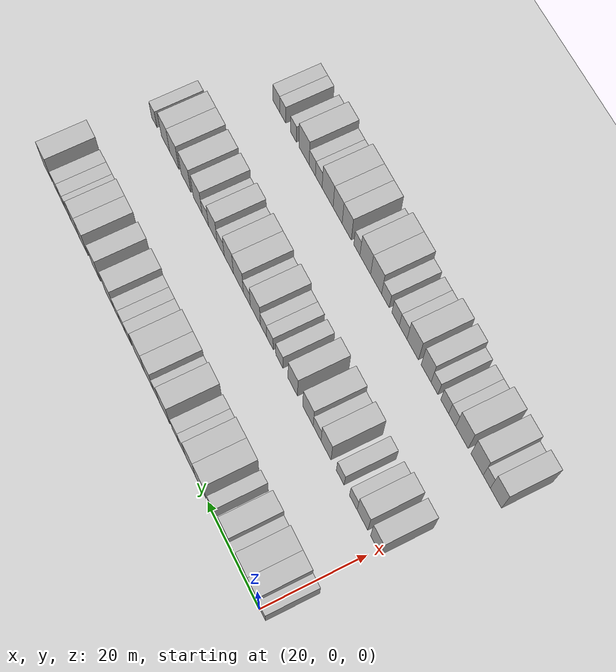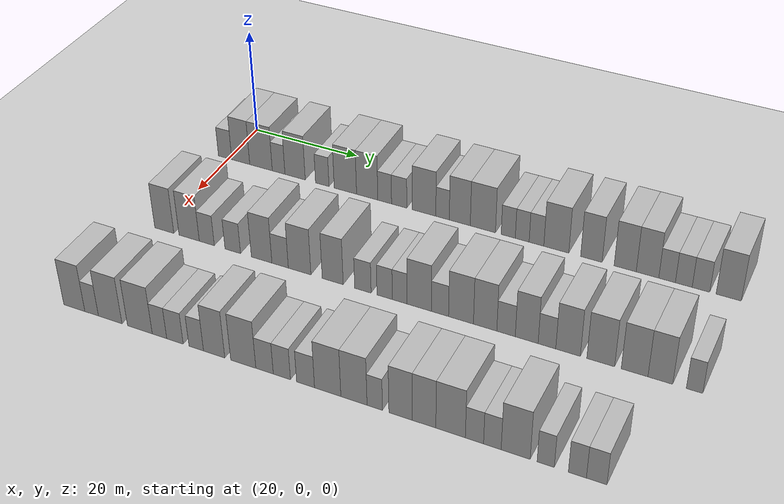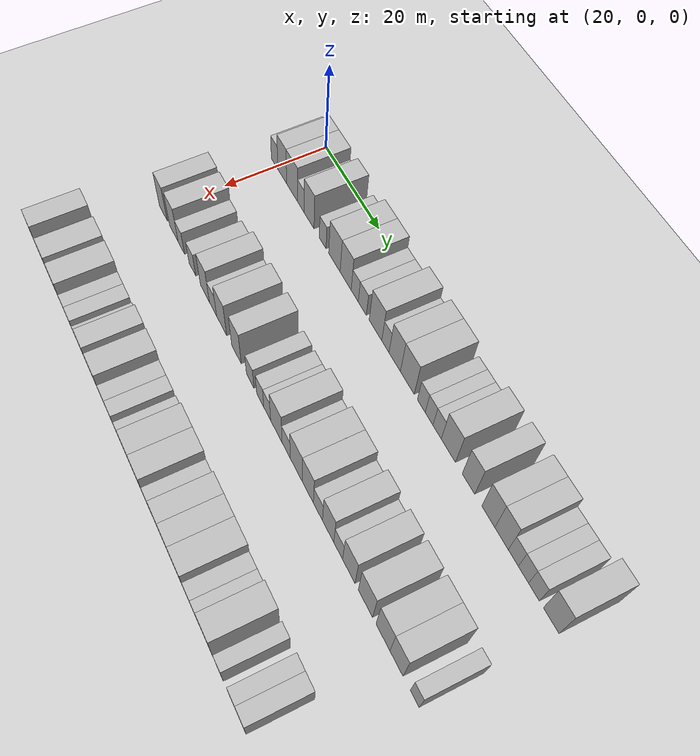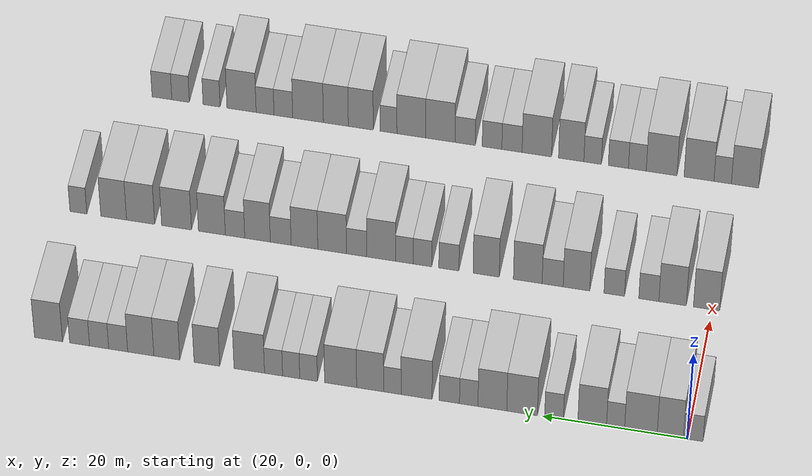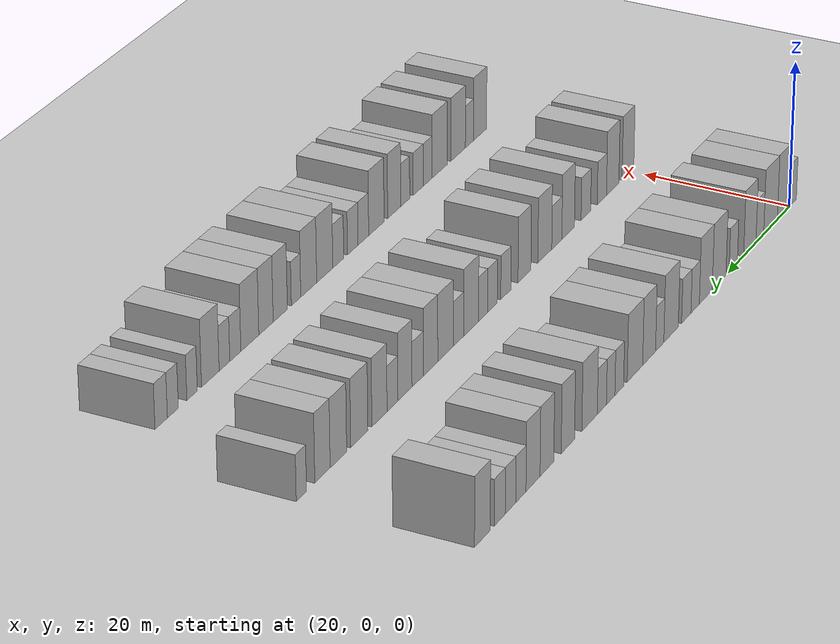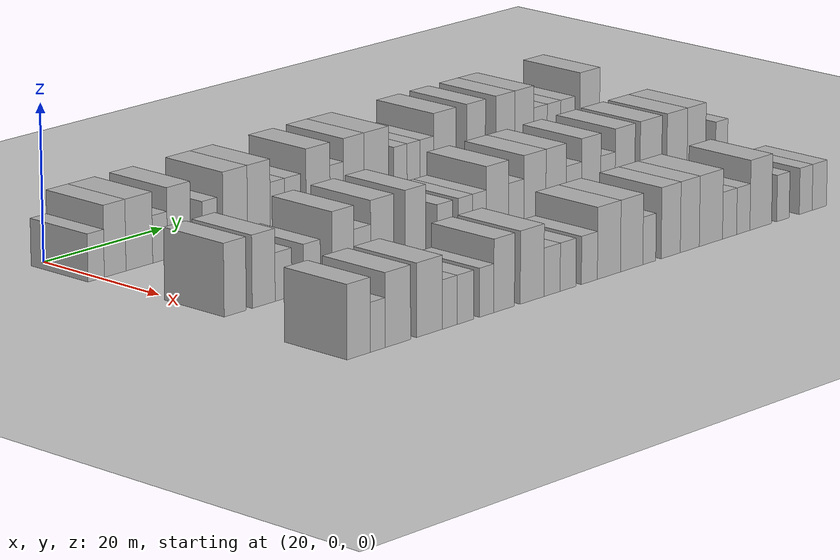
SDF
<sdf version="1.6">
 <world name="default">
  <include><name>ground_plane_1</name><uri>model://HANNAS_ground_plane</uri></include>
  <model name="building_96">
   <static>1</static>
   <pose>25.0000 -0.7693 0 0.000000 0.000000 0.000000</pose>
   <link name="link">
    <pose>0 0 3.00 0 0 0</pose>
    <collision name="collision"><geometry><box><size>10.0000 2.6978 6.0000</size></box></geometry></collision>
    <visual name="visual">
     <cast_shadows>0</cast_shadows>
     <geometry><box><size>10.0000 2.6978 6.0000</size></box></geometry>
     <material>
      <script>
       <uri>model://HANNAS_wall/materials/scripts</uri>
       <uri>model://HANNAS_wall/materials/textures</uri>
       <name>vrc/HANNAS_wall</name>
      </script>
     </material>
    </visual>
   </link>
  </model>
  <model name="building_97">
   <static>1</static>
   <pose>25.0000 2.3828 0 0.000000 0.000000 0.000000</pose>
   <link name="link">
    <pose>0 0 4.50 0 0 0</pose>
    <collision name="collision"><geometry><box><size>10.0000 3.6064 9.0000</size></box></geometry></collision>
    <visual name="visual">
     <cast_shadows>0</cast_shadows>
     <geometry><box><size>10.0000 3.6064 9.0000</size></box></geometry>
     <material>
      <script>
       <uri>model://HANNAS_wall/materials/scripts</uri>
       <uri>model://HANNAS_wall/materials/textures</uri>
       <name>vrc/HANNAS_wall</name>
      </script>
     </material>
    </visual>
   </link>
  </model>
  <model name="building_98">
   <static>1</static>
   <pose>25.0000 6.4276 0 0.000000 0.000000 0.000000</pose>
   <link name="link">
    <pose>0 0 4.50 0 0 0</pose>
    <collision name="collision"><geometry><box><size>10.0000 4.4834 9.0000</size></box></geometry></collision>
    <visual name="visual">
     <cast_shadows>0</cast_shadows>
     <geometry><box><size>10.0000 4.4834 9.0000</size></box></geometry>
     <material>
      <script>
       <uri>model://HANNAS_wall/materials/scripts</uri>
       <uri>model://HANNAS_wall/materials/textures</uri>
       <name>vrc/HANNAS_wall</name>
      </script>
     </material>
    </visual>
   </link>
  </model>
  <model name="building_99">
   <static>1</static>
   <pose>25.0000 9.9178 0 0.000000 0.000000 0.000000</pose>
   <link name="link">
    <pose>0 0 3.00 0 0 0</pose>
    <collision name="collision"><geometry><box><size>10.0000 2.4969 6.0000</size></box></geometry></collision>
    <visual name="visual">
     <cast_shadows>0</cast_shadows>
     <geometry><box><size>10.0000 2.4969 6.0000</size></box></geometry>
     <material>
      <script>
       <uri>model://HANNAS_wall/materials/scripts</uri>
       <uri>model://HANNAS_wall/materials/textures</uri>
       <name>vrc/HANNAS_wall</name>
      </script>
     </material>
    </visual>
   </link>
  </model>
  <model name="building_100">
   <static>1</static>
   <pose>25.0000 13.1443 0 0.000000 0.000000 0.000000</pose>
   <link name="link">
    <pose>0 0 4.50 0 0 0</pose>
    <collision name="collision"><geometry><box><size>10.0000 3.9560 9.0000</size></box></geometry></collision>
    <visual name="visual">
     <cast_shadows>0</cast_shadows>
     <geometry><box><size>10.0000 3.9560 9.0000</size></box></geometry>
     <material>
      <script>
       <uri>model://HANNAS_wall/materials/scripts</uri>
       <uri>model://HANNAS_wall/materials/textures</uri>
       <name>vrc/HANNAS_wall</name>
      </script>
     </material>
    </visual>
   </link>
  </model>
  <model name="building_101">
   <static>1</static>
   <pose>25.0000 18.4155 0 0.000000 0.000000 0.000000</pose>
   <link name="link">
    <pose>0 0 3.00 0 0 0</pose>
    <collision name="collision"><geometry><box><size>10.0000 2.5864 6.0000</size></box></geometry></collision>
    <visual name="visual">
     <cast_shadows>0</cast_shadows>
     <geometry><box><size>10.0000 2.5864 6.0000</size></box></geometry>
     <material>
      <script>
       <uri>model://HANNAS_wall/materials/scripts</uri>
       <uri>model://HANNAS_wall/materials/textures</uri>
       <name>vrc/HANNAS_wall</name>
      </script>
     </material>
    </visual>
   </link>
  </model>
  <model name="building_102">
   <static>1</static>
   <pose>25.0000 22.8309 0 0.000000 0.000000 0.000000</pose>
   <link name="link">
    <pose>0 0 4.50 0 0 0</pose>
    <collision name="collision"><geometry><box><size>10.0000 4.2445 9.0000</size></box></geometry></collision>
    <visual name="visual">
     <cast_shadows>0</cast_shadows>
     <geometry><box><size>10.0000 4.2445 9.0000</size></box></geometry>
     <material>
      <script>
       <uri>model://HANNAS_wall/materials/scripts</uri>
       <uri>model://HANNAS_wall/materials/textures</uri>
       <name>vrc/HANNAS_wall</name>
      </script>
     </material>
    </visual>
   </link>
  </model>
  <model name="building_103">
   <static>1</static>
   <pose>25.0000 26.9489 0 0.000000 0.000000 0.000000</pose>
   <link name="link">
    <pose>0 0 4.50 0 0 0</pose>
    <collision name="collision"><geometry><box><size>10.0000 3.9914 9.0000</size></box></geometry></collision>
    <visual name="visual">
     <cast_shadows>0</cast_shadows>
     <geometry><box><size>10.0000 3.9914 9.0000</size></box></geometry>
     <material>
      <script>
       <uri>model://HANNAS_wall/materials/scripts</uri>
       <uri>model://HANNAS_wall/materials/textures</uri>
       <name>vrc/HANNAS_wall</name>
      </script>
     </material>
    </visual>
   </link>
  </model>
  <model name="building_104">
   <static>1</static>
   <pose>25.0000 30.2217 0 0.000000 0.000000 0.000000</pose>
   <link name="link">
    <pose>0 0 3.00 0 0 0</pose>
    <collision name="collision"><geometry><box><size>10.0000 2.5542 6.0000</size></box></geometry></collision>
    <visual name="visual">
     <cast_shadows>0</cast_shadows>
     <geometry><box><size>10.0000 2.5542 6.0000</size></box></geometry>
     <material>
      <script>
       <uri>model://HANNAS_wall/materials/scripts</uri>
       <uri>model://HANNAS_wall/materials/textures</uri>
       <name>vrc/HANNAS_wall</name>
      </script>
     </material>
    </visual>
   </link>
  </model>
  <model name="building_105">
   <static>1</static>
   <pose>25.0000 32.9067 0 0.000000 0.000000 0.000000</pose>
   <link name="link">
    <pose>0 0 3.00 0 0 0</pose>
    <collision name="collision"><geometry><box><size>10.0000 2.8159 6.0000</size></box></geometry></collision>
    <visual name="visual">
     <cast_shadows>0</cast_shadows>
     <geometry><box><size>10.0000 2.8159 6.0000</size></box></geometry>
     <material>
      <script>
       <uri>model://HANNAS_wall/materials/scripts</uri>
       <uri>model://HANNAS_wall/materials/textures</uri>
       <name>vrc/HANNAS_wall</name>
      </script>
     </material>
    </visual>
   </link>
  </model>
  <model name="building_106">
   <static>1</static>
   <pose>25.0000 37.4665 0 0.000000 0.000000 0.000000</pose>
   <link name="link">
    <pose>0 0 4.50 0 0 0</pose>
    <collision name="collision"><geometry><box><size>10.0000 4.3036 9.0000</size></box></geometry></collision>
    <visual name="visual">
     <cast_shadows>0</cast_shadows>
     <geometry><box><size>10.0000 4.3036 9.0000</size></box></geometry>
     <material>
      <script>
       <uri>model://HANNAS_wall/materials/scripts</uri>
       <uri>model://HANNAS_wall/materials/textures</uri>
       <name>vrc/HANNAS_wall</name>
      </script>
     </material>
    </visual>
   </link>
  </model>
  <model name="building_107">
   <static>1</static>
   <pose>25.0000 40.8359 0 0.000000 0.000000 0.000000</pose>
   <link name="link">
    <pose>0 0 3.00 0 0 0</pose>
    <collision name="collision"><geometry><box><size>10.0000 2.4352 6.0000</size></box></geometry></collision>
    <visual name="visual">
     <cast_shadows>0</cast_shadows>
     <geometry><box><size>10.0000 2.4352 6.0000</size></box></geometry>
     <material>
      <script>
       <uri>model://HANNAS_wall/materials/scripts</uri>
       <uri>model://HANNAS_wall/materials/textures</uri>
       <name>vrc/HANNAS_wall</name>
      </script>
     </material>
    </visual>
   </link>
  </model>
  <model name="building_108">
   <static>1</static>
   <pose>25.0000 43.9327 0 0.000000 0.000000 0.000000</pose>
   <link name="link">
    <pose>0 0 4.50 0 0 0</pose>
    <collision name="collision"><geometry><box><size>10.0000 3.7583 9.0000</size></box></geometry></collision>
    <visual name="visual">
     <cast_shadows>0</cast_shadows>
     <geometry><box><size>10.0000 3.7583 9.0000</size></box></geometry>
     <material>
      <script>
       <uri>model://HANNAS_wall/materials/scripts</uri>
       <uri>model://HANNAS_wall/materials/textures</uri>
       <name>vrc/HANNAS_wall</name>
      </script>
     </material>
    </visual>
   </link>
  </model>
  <model name="building_109">
   <static>1</static>
   <pose>25.0000 48.0435 0 0.000000 0.000000 0.000000</pose>
   <link name="link">
    <pose>0 0 4.50 0 0 0</pose>
    <collision name="collision"><geometry><box><size>10.0000 4.4634 9.0000</size></box></geometry></collision>
    <visual name="visual">
     <cast_shadows>0</cast_shadows>
     <geometry><box><size>10.0000 4.4634 9.0000</size></box></geometry>
     <material>
      <script>
       <uri>model://HANNAS_wall/materials/scripts</uri>
       <uri>model://HANNAS_wall/materials/textures</uri>
       <name>vrc/HANNAS_wall</name>
      </script>
     </material>
    </visual>
   </link>
  </model>
  <model name="building_110">
   <static>1</static>
   <pose>25.0000 52.5089 0 0.000000 0.000000 0.000000</pose>
   <link name="link">
    <pose>0 0 3.00 0 0 0</pose>
    <collision name="collision"><geometry><box><size>10.0000 2.4673 6.0000</size></box></geometry></collision>
    <visual name="visual">
     <cast_shadows>0</cast_shadows>
     <geometry><box><size>10.0000 2.4673 6.0000</size></box></geometry>
     <material>
      <script>
       <uri>model://HANNAS_wall/materials/scripts</uri>
       <uri>model://HANNAS_wall/materials/textures</uri>
       <name>vrc/HANNAS_wall</name>
      </script>
     </material>
    </visual>
   </link>
  </model>
  <model name="building_111">
   <static>1</static>
   <pose>25.0000 54.9427 0 0.000000 0.000000 0.000000</pose>
   <link name="link">
    <pose>0 0 3.00 0 0 0</pose>
    <collision name="collision"><geometry><box><size>10.0000 2.4004 6.0000</size></box></geometry></collision>
    <visual name="visual">
     <cast_shadows>0</cast_shadows>
     <geometry><box><size>10.0000 2.4004 6.0000</size></box></geometry>
     <material>
      <script>
       <uri>model://HANNAS_wall/materials/scripts</uri>
       <uri>model://HANNAS_wall/materials/textures</uri>
       <name>vrc/HANNAS_wall</name>
      </script>
     </material>
    </visual>
   </link>
  </model>
  <model name="building_112">
   <static>1</static>
   <pose>25.0000 57.4086 0 0.000000 0.000000 0.000000</pose>
   <link name="link">
    <pose>0 0 3.00 0 0 0</pose>
    <collision name="collision"><geometry><box><size>10.0000 2.5314 6.0000</size></box></geometry></collision>
    <visual name="visual">
     <cast_shadows>0</cast_shadows>
     <geometry><box><size>10.0000 2.5314 6.0000</size></box></geometry>
     <material>
      <script>
       <uri>model://HANNAS_wall/materials/scripts</uri>
       <uri>model://HANNAS_wall/materials/textures</uri>
       <name>vrc/HANNAS_wall</name>
      </script>
     </material>
    </visual>
   </link>
  </model>
  <model name="building_113">
   <static>1</static>
   <pose>25.0000 60.8050 0 0.000000 0.000000 0.000000</pose>
   <link name="link">
    <pose>0 0 4.50 0 0 0</pose>
    <collision name="collision"><geometry><box><size>10.0000 4.2615 9.0000</size></box></geometry></collision>
    <visual name="visual">
     <cast_shadows>0</cast_shadows>
     <geometry><box><size>10.0000 4.2615 9.0000</size></box></geometry>
     <material>
      <script>
       <uri>model://HANNAS_wall/materials/scripts</uri>
       <uri>model://HANNAS_wall/materials/textures</uri>
       <name>vrc/HANNAS_wall</name>
      </script>
     </material>
    </visual>
   </link>
  </model>
  <model name="building_114">
   <static>1</static>
   <pose>25.0000 66.7361 0 0.000000 0.000000 0.000000</pose>
   <link name="link">
    <pose>0 0 4.50 0 0 0</pose>
    <collision name="collision"><geometry><box><size>10.0000 3.6007 9.0000</size></box></geometry></collision>
    <visual name="visual">
     <cast_shadows>0</cast_shadows>
     <geometry><box><size>10.0000 3.6007 9.0000</size></box></geometry>
     <material>
      <script>
       <uri>model://HANNAS_wall/materials/scripts</uri>
       <uri>model://HANNAS_wall/materials/textures</uri>
       <name>vrc/HANNAS_wall</name>
      </script>
     </material>
    </visual>
   </link>
  </model>
  <model name="building_115">
   <static>1</static>
   <pose>25.0000 72.3580 0 0.000000 0.000000 0.000000</pose>
   <link name="link">
    <pose>0 0 4.50 0 0 0</pose>
    <collision name="collision"><geometry><box><size>10.0000 3.6429 9.0000</size></box></geometry></collision>
    <visual name="visual">
     <cast_shadows>0</cast_shadows>
     <geometry><box><size>10.0000 3.6429 9.0000</size></box></geometry>
     <material>
      <script>
       <uri>model://HANNAS_wall/materials/scripts</uri>
       <uri>model://HANNAS_wall/materials/textures</uri>
       <name>vrc/HANNAS_wall</name>
      </script>
     </material>
    </visual>
   </link>
  </model>
  <model name="building_116">
   <static>1</static>
   <pose>25.0000 76.0213 0 0.000000 0.000000 0.000000</pose>
   <link name="link">
    <pose>0 0 4.50 0 0 0</pose>
    <collision name="collision"><geometry><box><size>10.0000 3.6837 9.0000</size></box></geometry></collision>
    <visual name="visual">
     <cast_shadows>0</cast_shadows>
     <geometry><box><size>10.0000 3.6837 9.0000</size></box></geometry>
     <material>
      <script>
       <uri>model://HANNAS_wall/materials/scripts</uri>
       <uri>model://HANNAS_wall/materials/textures</uri>
       <name>vrc/HANNAS_wall</name>
      </script>
     </material>
    </visual>
   </link>
  </model>
  <model name="building_117">
   <static>1</static>
   <pose>25.0000 79.2006 0 0.000000 0.000000 0.000000</pose>
   <link name="link">
    <pose>0 0 3.00 0 0 0</pose>
    <collision name="collision"><geometry><box><size>10.0000 2.6751 6.0000</size></box></geometry></collision>
    <visual name="visual">
     <cast_shadows>0</cast_shadows>
     <geometry><box><size>10.0000 2.6751 6.0000</size></box></geometry>
     <material>
      <script>
       <uri>model://HANNAS_wall/materials/scripts</uri>
       <uri>model://HANNAS_wall/materials/textures</uri>
       <name>vrc/HANNAS_wall</name>
      </script>
     </material>
    </visual>
   </link>
  </model>
  <model name="building_118">
   <static>1</static>
   <pose>25.0000 81.8854 0 0.000000 0.000000 0.000000</pose>
   <link name="link">
    <pose>0 0 3.00 0 0 0</pose>
    <collision name="collision"><geometry><box><size>10.0000 2.6946 6.0000</size></box></geometry></collision>
    <visual name="visual">
     <cast_shadows>0</cast_shadows>
     <geometry><box><size>10.0000 2.6946 6.0000</size></box></geometry>
     <material>
      <script>
       <uri>model://HANNAS_wall/materials/scripts</uri>
       <uri>model://HANNAS_wall/materials/textures</uri>
       <name>vrc/HANNAS_wall</name>
      </script>
     </material>
    </visual>
   </link>
  </model>
  <model name="building_119">
   <static>1</static>
   <pose>25.0000 84.6328 0 0.000000 0.000000 0.000000</pose>
   <link name="link">
    <pose>0 0 3.00 0 0 0</pose>
    <collision name="collision"><geometry><box><size>10.0000 2.8002 6.0000</size></box></geometry></collision>
    <visual name="visual">
     <cast_shadows>0</cast_shadows>
     <geometry><box><size>10.0000 2.8002 6.0000</size></box></geometry>
     <material>
      <script>
       <uri>model://HANNAS_wall/materials/scripts</uri>
       <uri>model://HANNAS_wall/materials/textures</uri>
       <name>vrc/HANNAS_wall</name>
      </script>
     </material>
    </visual>
   </link>
  </model>
  <model name="building_120">
   <static>1</static>
   <pose>25.0000 89.0095 0 0.000000 0.000000 0.000000</pose>
   <link name="link">
    <pose>0 0 4.50 0 0 0</pose>
    <collision name="collision"><geometry><box><size>10.0000 3.9533 9.0000</size></box></geometry></collision>
    <visual name="visual">
     <cast_shadows>0</cast_shadows>
     <geometry><box><size>10.0000 3.9533 9.0000</size></box></geometry>
     <material>
      <script>
       <uri>model://HANNAS_wall/materials/scripts</uri>
       <uri>model://HANNAS_wall/materials/textures</uri>
       <name>vrc/HANNAS_wall</name>
      </script>
     </material>
    </visual>
   </link>
  </model>
  <model name="building_282">
   <static>1</static>
   <pose>47.0000 0.8235 0 0.000000 0.000000 0.000000</pose>
   <link name="link">
    <pose>0 0 4.50 0 0 0</pose>
    <collision name="collision"><geometry><box><size>10.0000 3.6619 9.0000</size></box></geometry></collision>
    <visual name="visual">
     <cast_shadows>0</cast_shadows>
     <geometry><box><size>10.0000 3.6619 9.0000</size></box></geometry>
     <material>
      <script>
       <uri>model://HANNAS_wall/materials/scripts</uri>
       <uri>model://HANNAS_wall/materials/textures</uri>
       <name>vrc/HANNAS_wall</name>
      </script>
     </material>
    </visual>
   </link>
  </model>
  <model name="building_283">
   <static>1</static>
   <pose>47.0000 5.5740 0 0.000000 0.000000 0.000000</pose>
   <link name="link">
    <pose>0 0 4.50 0 0 0</pose>
    <collision name="collision"><geometry><box><size>10.0000 3.8389 9.0000</size></box></geometry></collision>
    <visual name="visual">
     <cast_shadows>0</cast_shadows>
     <geometry><box><size>10.0000 3.8389 9.0000</size></box></geometry>
     <material>
      <script>
       <uri>model://HANNAS_wall/materials/scripts</uri>
       <uri>model://HANNAS_wall/materials/textures</uri>
       <name>vrc/HANNAS_wall</name>
      </script>
     </material>
    </visual>
   </link>
  </model>
  <model name="building_284">
   <static>1</static>
   <pose>47.0000 8.9031 0 0.000000 0.000000 0.000000</pose>
   <link name="link">
    <pose>0 0 3.00 0 0 0</pose>
    <collision name="collision"><geometry><box><size>10.0000 2.8193 6.0000</size></box></geometry></collision>
    <visual name="visual">
     <cast_shadows>0</cast_shadows>
     <geometry><box><size>10.0000 2.8193 6.0000</size></box></geometry>
     <material>
      <script>
       <uri>model://HANNAS_wall/materials/scripts</uri>
       <uri>model://HANNAS_wall/materials/textures</uri>
       <name>vrc/HANNAS_wall</name>
      </script>
     </material>
    </visual>
   </link>
  </model>
  <model name="building_285">
   <static>1</static>
   <pose>47.0000 13.7507 0 0.000000 0.000000 0.000000</pose>
   <link name="link">
    <pose>0 0 3.00 0 0 0</pose>
    <collision name="collision"><geometry><box><size>10.0000 2.8761 6.0000</size></box></geometry></collision>
    <visual name="visual">
     <cast_shadows>0</cast_shadows>
     <geometry><box><size>10.0000 2.8761 6.0000</size></box></geometry>
     <material>
      <script>
       <uri>model://HANNAS_wall/materials/scripts</uri>
       <uri>model://HANNAS_wall/materials/textures</uri>
       <name>vrc/HANNAS_wall</name>
      </script>
     </material>
    </visual>
   </link>
  </model>
  <model name="building_286">
   <static>1</static>
   <pose>47.0000 19.0590 0 0.000000 0.000000 0.000000</pose>
   <link name="link">
    <pose>0 0 4.50 0 0 0</pose>
    <collision name="collision"><geometry><box><size>10.0000 3.7406 9.0000</size></box></geometry></collision>
    <visual name="visual">
     <cast_shadows>0</cast_shadows>
     <geometry><box><size>10.0000 3.7406 9.0000</size></box></geometry>
     <material>
      <script>
       <uri>model://HANNAS_wall/materials/scripts</uri>
       <uri>model://HANNAS_wall/materials/textures</uri>
       <name>vrc/HANNAS_wall</name>
      </script>
     </material>
    </visual>
   </link>
  </model>
  <model name="building_287">
   <static>1</static>
   <pose>47.0000 22.4105 0 0.000000 0.000000 0.000000</pose>
   <link name="link">
    <pose>0 0 3.00 0 0 0</pose>
    <collision name="collision"><geometry><box><size>10.0000 2.9623 6.0000</size></box></geometry></collision>
    <visual name="visual">
     <cast_shadows>0</cast_shadows>
     <geometry><box><size>10.0000 2.9623 6.0000</size></box></geometry>
     <material>
      <script>
       <uri>model://HANNAS_wall/materials/scripts</uri>
       <uri>model://HANNAS_wall/materials/textures</uri>
       <name>vrc/HANNAS_wall</name>
      </script>
     </material>
    </visual>
   </link>
  </model>
  <model name="building_288">
   <static>1</static>
   <pose>47.0000 25.9115 0 0.000000 0.000000 0.000000</pose>
   <link name="link">
    <pose>0 0 4.50 0 0 0</pose>
    <collision name="collision"><geometry><box><size>10.0000 4.0396 9.0000</size></box></geometry></collision>
    <visual name="visual">
     <cast_shadows>0</cast_shadows>
     <geometry><box><size>10.0000 4.0396 9.0000</size></box></geometry>
     <material>
      <script>
       <uri>model://HANNAS_wall/materials/scripts</uri>
       <uri>model://HANNAS_wall/materials/textures</uri>
       <name>vrc/HANNAS_wall</name>
      </script>
     </material>
    </visual>
   </link>
  </model>
  <model name="building_289">
   <static>1</static>
   <pose>47.0000 31.7763 0 0.000000 0.000000 0.000000</pose>
   <link name="link">
    <pose>0 0 4.50 0 0 0</pose>
    <collision name="collision"><geometry><box><size>10.0000 3.6900 9.0000</size></box></geometry></collision>
    <visual name="visual">
     <cast_shadows>0</cast_shadows>
     <geometry><box><size>10.0000 3.6900 9.0000</size></box></geometry>
     <material>
      <script>
       <uri>model://HANNAS_wall/materials/scripts</uri>
       <uri>model://HANNAS_wall/materials/textures</uri>
       <name>vrc/HANNAS_wall</name>
      </script>
     </material>
    </visual>
   </link>
  </model>
  <model name="building_290">
   <static>1</static>
   <pose>47.0000 37.0419 0 0.000000 0.000000 0.000000</pose>
   <link name="link">
    <pose>0 0 3.00 0 0 0</pose>
    <collision name="collision"><geometry><box><size>10.0000 2.8412 6.0000</size></box></geometry></collision>
    <visual name="visual">
     <cast_shadows>0</cast_shadows>
     <geometry><box><size>10.0000 2.8412 6.0000</size></box></geometry>
     <material>
      <script>
       <uri>model://HANNAS_wall/materials/scripts</uri>
       <uri>model://HANNAS_wall/materials/textures</uri>
       <name>vrc/HANNAS_wall</name>
      </script>
     </material>
    </visual>
   </link>
  </model>
  <model name="building_291">
   <static>1</static>
   <pose>47.0000 40.7753 0 0.000000 0.000000 0.000000</pose>
   <link name="link">
    <pose>0 0 3.00 0 0 0</pose>
    <collision name="collision"><geometry><box><size>10.0000 2.6255 6.0000</size></box></geometry></collision>
    <visual name="visual">
     <cast_shadows>0</cast_shadows>
     <geometry><box><size>10.0000 2.6255 6.0000</size></box></geometry>
     <material>
      <script>
       <uri>model://HANNAS_wall/materials/scripts</uri>
       <uri>model://HANNAS_wall/materials/textures</uri>
       <name>vrc/HANNAS_wall</name>
      </script>
     </material>
    </visual>
   </link>
  </model>
  <model name="building_292">
   <static>1</static>
   <pose>47.0000 43.3401 0 0.000000 0.000000 0.000000</pose>
   <link name="link">
    <pose>0 0 3.00 0 0 0</pose>
    <collision name="collision"><geometry><box><size>10.0000 2.5040 6.0000</size></box></geometry></collision>
    <visual name="visual">
     <cast_shadows>0</cast_shadows>
     <geometry><box><size>10.0000 2.5040 6.0000</size></box></geometry>
     <material>
      <script>
       <uri>model://HANNAS_wall/materials/scripts</uri>
       <uri>model://HANNAS_wall/materials/textures</uri>
       <name>vrc/HANNAS_wall</name>
      </script>
     </material>
    </visual>
   </link>
  </model>
  <model name="building_293">
   <static>1</static>
   <pose>47.0000 46.6297 0 0.000000 0.000000 0.000000</pose>
   <link name="link">
    <pose>0 0 4.50 0 0 0</pose>
    <collision name="collision"><geometry><box><size>10.0000 4.0752 9.0000</size></box></geometry></collision>
    <visual name="visual">
     <cast_shadows>0</cast_shadows>
     <geometry><box><size>10.0000 4.0752 9.0000</size></box></geometry>
     <material>
      <script>
       <uri>model://HANNAS_wall/materials/scripts</uri>
       <uri>model://HANNAS_wall/materials/textures</uri>
       <name>vrc/HANNAS_wall</name>
      </script>
     </material>
    </visual>
   </link>
  </model>
  <model name="building_294">
   <static>1</static>
   <pose>47.0000 50.0947 0 0.000000 0.000000 0.000000</pose>
   <link name="link">
    <pose>0 0 3.00 0 0 0</pose>
    <collision name="collision"><geometry><box><size>10.0000 2.8548 6.0000</size></box></geometry></collision>
    <visual name="visual">
     <cast_shadows>0</cast_shadows>
     <geometry><box><size>10.0000 2.8548 6.0000</size></box></geometry>
     <material>
      <script>
       <uri>model://HANNAS_wall/materials/scripts</uri>
       <uri>model://HANNAS_wall/materials/textures</uri>
       <name>vrc/HANNAS_wall</name>
      </script>
     </material>
    </visual>
   </link>
  </model>
  <model name="building_295">
   <static>1</static>
   <pose>47.0000 53.5658 0 0.000000 0.000000 0.000000</pose>
   <link name="link">
    <pose>0 0 4.50 0 0 0</pose>
    <collision name="collision"><geometry><box><size>10.0000 4.0875 9.0000</size></box></geometry></collision>
    <visual name="visual">
     <cast_shadows>0</cast_shadows>
     <geometry><box><size>10.0000 4.0875 9.0000</size></box></geometry>
     <material>
      <script>
       <uri>model://HANNAS_wall/materials/scripts</uri>
       <uri>model://HANNAS_wall/materials/textures</uri>
       <name>vrc/HANNAS_wall</name>
      </script>
     </material>
    </visual>
   </link>
  </model>
  <model name="building_296">
   <static>1</static>
   <pose>47.0000 57.5071 0 0.000000 0.000000 0.000000</pose>
   <link name="link">
    <pose>0 0 4.50 0 0 0</pose>
    <collision name="collision"><geometry><box><size>10.0000 3.7950 9.0000</size></box></geometry></collision>
    <visual name="visual">
     <cast_shadows>0</cast_shadows>
     <geometry><box><size>10.0000 3.7950 9.0000</size></box></geometry>
     <material>
      <script>
       <uri>model://HANNAS_wall/materials/scripts</uri>
       <uri>model://HANNAS_wall/materials/textures</uri>
       <name>vrc/HANNAS_wall</name>
      </script>
     </material>
    </visual>
   </link>
  </model>
  <model name="building_297">
   <static>1</static>
   <pose>47.0000 60.8852 0 0.000000 0.000000 0.000000</pose>
   <link name="link">
    <pose>0 0 3.00 0 0 0</pose>
    <collision name="collision"><geometry><box><size>10.0000 2.9613 6.0000</size></box></geometry></collision>
    <visual name="visual">
     <cast_shadows>0</cast_shadows>
     <geometry><box><size>10.0000 2.9613 6.0000</size></box></geometry>
     <material>
      <script>
       <uri>model://HANNAS_wall/materials/scripts</uri>
       <uri>model://HANNAS_wall/materials/textures</uri>
       <name>vrc/HANNAS_wall</name>
      </script>
     </material>
    </visual>
   </link>
  </model>
  <model name="building_298">
   <static>1</static>
   <pose>47.0000 64.1844 0 0.000000 0.000000 0.000000</pose>
   <link name="link">
    <pose>0 0 4.50 0 0 0</pose>
    <collision name="collision"><geometry><box><size>10.0000 3.6370 9.0000</size></box></geometry></collision>
    <visual name="visual">
     <cast_shadows>0</cast_shadows>
     <geometry><box><size>10.0000 3.6370 9.0000</size></box></geometry>
     <material>
      <script>
       <uri>model://HANNAS_wall/materials/scripts</uri>
       <uri>model://HANNAS_wall/materials/textures</uri>
       <name>vrc/HANNAS_wall</name>
      </script>
     </material>
    </visual>
   </link>
  </model>
  <model name="building_299">
   <static>1</static>
   <pose>47.0000 67.3896 0 0.000000 0.000000 0.000000</pose>
   <link name="link">
    <pose>0 0 3.00 0 0 0</pose>
    <collision name="collision"><geometry><box><size>10.0000 2.7734 6.0000</size></box></geometry></collision>
    <visual name="visual">
     <cast_shadows>0</cast_shadows>
     <geometry><box><size>10.0000 2.7734 6.0000</size></box></geometry>
     <material>
      <script>
       <uri>model://HANNAS_wall/materials/scripts</uri>
       <uri>model://HANNAS_wall/materials/textures</uri>
       <name>vrc/HANNAS_wall</name>
      </script>
     </material>
    </visual>
   </link>
  </model>
  <model name="building_300">
   <static>1</static>
   <pose>47.0000 70.6910 0 0.000000 0.000000 0.000000</pose>
   <link name="link">
    <pose>0 0 4.50 0 0 0</pose>
    <collision name="collision"><geometry><box><size>10.0000 3.8295 9.0000</size></box></geometry></collision>
    <visual name="visual">
     <cast_shadows>0</cast_shadows>
     <geometry><box><size>10.0000 3.8295 9.0000</size></box></geometry>
     <material>
      <script>
       <uri>model://HANNAS_wall/materials/scripts</uri>
       <uri>model://HANNAS_wall/materials/textures</uri>
       <name>vrc/HANNAS_wall</name>
      </script>
     </material>
    </visual>
   </link>
  </model>
  <model name="building_301">
   <static>1</static>
   <pose>47.0000 75.7354 0 0.000000 0.000000 0.000000</pose>
   <link name="link">
    <pose>0 0 4.50 0 0 0</pose>
    <collision name="collision"><geometry><box><size>10.0000 4.2593 9.0000</size></box></geometry></collision>
    <visual name="visual">
     <cast_shadows>0</cast_shadows>
     <geometry><box><size>10.0000 4.2593 9.0000</size></box></geometry>
     <material>
      <script>
       <uri>model://HANNAS_wall/materials/scripts</uri>
       <uri>model://HANNAS_wall/materials/textures</uri>
       <name>vrc/HANNAS_wall</name>
      </script>
     </material>
    </visual>
   </link>
  </model>
  <model name="building_302">
   <static>1</static>
   <pose>47.0000 80.8781 0 0.000000 0.000000 0.000000</pose>
   <link name="link">
    <pose>0 0 4.50 0 0 0</pose>
    <collision name="collision"><geometry><box><size>10.0000 4.0260 9.0000</size></box></geometry></collision>
    <visual name="visual">
     <cast_shadows>0</cast_shadows>
     <geometry><box><size>10.0000 4.0260 9.0000</size></box></geometry>
     <material>
      <script>
       <uri>model://HANNAS_wall/materials/scripts</uri>
       <uri>model://HANNAS_wall/materials/textures</uri>
       <name>vrc/HANNAS_wall</name>
      </script>
     </material>
    </visual>
   </link>
  </model>
  <model name="building_303">
   <static>1</static>
   <pose>47.0000 84.7371 0 0.000000 0.000000 0.000000</pose>
   <link name="link">
    <pose>0 0 4.50 0 0 0</pose>
    <collision name="collision"><geometry><box><size>10.0000 3.6920 9.0000</size></box></geometry></collision>
    <visual name="visual">
     <cast_shadows>0</cast_shadows>
     <geometry><box><size>10.0000 3.6920 9.0000</size></box></geometry>
     <material>
      <script>
       <uri>model://HANNAS_wall/materials/scripts</uri>
       <uri>model://HANNAS_wall/materials/textures</uri>
       <name>vrc/HANNAS_wall</name>
      </script>
     </material>
    </visual>
   </link>
  </model>
  <model name="building_304">
   <static>1</static>
   <pose>47.0000 89.7901 0 0.000000 0.000000 0.000000</pose>
   <link name="link">
    <pose>0 0 3.00 0 0 0</pose>
    <collision name="collision"><geometry><box><size>10.0000 2.4141 6.0000</size></box></geometry></collision>
    <visual name="visual">
     <cast_shadows>0</cast_shadows>
     <geometry><box><size>10.0000 2.4141 6.0000</size></box></geometry>
     <material>
      <script>
       <uri>model://HANNAS_wall/materials/scripts</uri>
       <uri>model://HANNAS_wall/materials/textures</uri>
       <name>vrc/HANNAS_wall</name>
      </script>
     </material>
    </visual>
   </link>
  </model>
  <model name="building_472">
   <static>1</static>
   <pose>69.0000 -1.2137 0 0.000000 0.000000 0.000000</pose>
   <link name="link">
    <pose>0 0 4.50 0 0 0</pose>
    <collision name="collision"><geometry><box><size>10.0000 3.8652 9.0000</size></box></geometry></collision>
    <visual name="visual">
     <cast_shadows>0</cast_shadows>
     <geometry><box><size>10.0000 3.8652 9.0000</size></box></geometry>
     <material>
      <script>
       <uri>model://HANNAS_wall/materials/scripts</uri>
       <uri>model://HANNAS_wall/materials/textures</uri>
       <name>vrc/HANNAS_wall</name>
      </script>
     </material>
    </visual>
   </link>
  </model>
  <model name="building_473">
   <static>1</static>
   <pose>69.0000 1.9572 0 0.000000 0.000000 0.000000</pose>
   <link name="link">
    <pose>0 0 3.00 0 0 0</pose>
    <collision name="collision"><geometry><box><size>10.0000 2.4765 6.0000</size></box></geometry></collision>
    <visual name="visual">
     <cast_shadows>0</cast_shadows>
     <geometry><box><size>10.0000 2.4765 6.0000</size></box></geometry>
     <material>
      <script>
       <uri>model://HANNAS_wall/materials/scripts</uri>
       <uri>model://HANNAS_wall/materials/textures</uri>
       <name>vrc/HANNAS_wall</name>
      </script>
     </material>
    </visual>
   </link>
  </model>
  <model name="building_474">
   <static>1</static>
   <pose>69.0000 5.3225 0 0.000000 0.000000 0.000000</pose>
   <link name="link">
    <pose>0 0 4.50 0 0 0</pose>
    <collision name="collision"><geometry><box><size>10.0000 4.2541 9.0000</size></box></geometry></collision>
    <visual name="visual">
     <cast_shadows>0</cast_shadows>
     <geometry><box><size>10.0000 4.2541 9.0000</size></box></geometry>
     <material>
      <script>
       <uri>model://HANNAS_wall/materials/scripts</uri>
       <uri>model://HANNAS_wall/materials/textures</uri>
       <name>vrc/HANNAS_wall</name>
      </script>
     </material>
    </visual>
   </link>
  </model>
  <model name="building_475">
   <static>1</static>
   <pose>69.0000 10.6438 0 0.000000 0.000000 0.000000</pose>
   <link name="link">
    <pose>0 0 4.50 0 0 0</pose>
    <collision name="collision"><geometry><box><size>10.0000 4.3885 9.0000</size></box></geometry></collision>
    <visual name="visual">
     <cast_shadows>0</cast_shadows>
     <geometry><box><size>10.0000 4.3885 9.0000</size></box></geometry>
     <material>
      <script>
       <uri>model://HANNAS_wall/materials/scripts</uri>
       <uri>model://HANNAS_wall/materials/textures</uri>
       <name>vrc/HANNAS_wall</name>
      </script>
     </material>
    </visual>
   </link>
  </model>
  <model name="building_476">
   <static>1</static>
   <pose>69.0000 14.1087 0 0.000000 0.000000 0.000000</pose>
   <link name="link">
    <pose>0 0 3.00 0 0 0</pose>
    <collision name="collision"><geometry><box><size>10.0000 2.5413 6.0000</size></box></geometry></collision>
    <visual name="visual">
     <cast_shadows>0</cast_shadows>
     <geometry><box><size>10.0000 2.5413 6.0000</size></box></geometry>
     <material>
      <script>
       <uri>model://HANNAS_wall/materials/scripts</uri>
       <uri>model://HANNAS_wall/materials/textures</uri>
       <name>vrc/HANNAS_wall</name>
      </script>
     </material>
    </visual>
   </link>
  </model>
  <model name="building_477">
   <static>1</static>
   <pose>69.0000 16.8133 0 0.000000 0.000000 0.000000</pose>
   <link name="link">
    <pose>0 0 3.00 0 0 0</pose>
    <collision name="collision"><geometry><box><size>10.0000 2.8680 6.0000</size></box></geometry></collision>
    <visual name="visual">
     <cast_shadows>0</cast_shadows>
     <geometry><box><size>10.0000 2.8680 6.0000</size></box></geometry>
     <material>
      <script>
       <uri>model://HANNAS_wall/materials/scripts</uri>
       <uri>model://HANNAS_wall/materials/textures</uri>
       <name>vrc/HANNAS_wall</name>
      </script>
     </material>
    </visual>
   </link>
  </model>
  <model name="building_478">
   <static>1</static>
   <pose>69.0000 20.4971 0 0.000000 0.000000 0.000000</pose>
   <link name="link">
    <pose>0 0 3.00 0 0 0</pose>
    <collision name="collision"><geometry><box><size>10.0000 2.4996 6.0000</size></box></geometry></collision>
    <visual name="visual">
     <cast_shadows>0</cast_shadows>
     <geometry><box><size>10.0000 2.4996 6.0000</size></box></geometry>
     <material>
      <script>
       <uri>model://HANNAS_wall/materials/scripts</uri>
       <uri>model://HANNAS_wall/materials/textures</uri>
       <name>vrc/HANNAS_wall</name>
      </script>
     </material>
    </visual>
   </link>
  </model>
  <model name="building_479">
   <static>1</static>
   <pose>69.0000 23.5612 0 0.000000 0.000000 0.000000</pose>
   <link name="link">
    <pose>0 0 4.50 0 0 0</pose>
    <collision name="collision"><geometry><box><size>10.0000 3.6288 9.0000</size></box></geometry></collision>
    <visual name="visual">
     <cast_shadows>0</cast_shadows>
     <geometry><box><size>10.0000 3.6288 9.0000</size></box></geometry>
     <material>
      <script>
       <uri>model://HANNAS_wall/materials/scripts</uri>
       <uri>model://HANNAS_wall/materials/textures</uri>
       <name>vrc/HANNAS_wall</name>
      </script>
     </material>
    </visual>
   </link>
  </model>
  <model name="building_480">
   <static>1</static>
   <pose>69.0000 28.4859 0 0.000000 0.000000 0.000000</pose>
   <link name="link">
    <pose>0 0 4.50 0 0 0</pose>
    <collision name="collision"><geometry><box><size>10.0000 4.2206 9.0000</size></box></geometry></collision>
    <visual name="visual">
     <cast_shadows>0</cast_shadows>
     <geometry><box><size>10.0000 4.2206 9.0000</size></box></geometry>
     <material>
      <script>
       <uri>model://HANNAS_wall/materials/scripts</uri>
       <uri>model://HANNAS_wall/materials/textures</uri>
       <name>vrc/HANNAS_wall</name>
      </script>
     </material>
    </visual>
   </link>
  </model>
  <model name="building_481">
   <static>1</static>
   <pose>69.0000 32.0418 0 0.000000 0.000000 0.000000</pose>
   <link name="link">
    <pose>0 0 3.00 0 0 0</pose>
    <collision name="collision"><geometry><box><size>10.0000 2.8912 6.0000</size></box></geometry></collision>
    <visual name="visual">
     <cast_shadows>0</cast_shadows>
     <geometry><box><size>10.0000 2.8912 6.0000</size></box></geometry>
     <material>
      <script>
       <uri>model://HANNAS_wall/materials/scripts</uri>
       <uri>model://HANNAS_wall/materials/textures</uri>
       <name>vrc/HANNAS_wall</name>
      </script>
     </material>
    </visual>
   </link>
  </model>
  <model name="building_482">
   <static>1</static>
   <pose>69.0000 34.8995 0 0.000000 0.000000 0.000000</pose>
   <link name="link">
    <pose>0 0 3.00 0 0 0</pose>
    <collision name="collision"><geometry><box><size>10.0000 2.8243 6.0000</size></box></geometry></collision>
    <visual name="visual">
     <cast_shadows>0</cast_shadows>
     <geometry><box><size>10.0000 2.8243 6.0000</size></box></geometry>
     <material>
      <script>
       <uri>model://HANNAS_wall/materials/scripts</uri>
       <uri>model://HANNAS_wall/materials/textures</uri>
       <name>vrc/HANNAS_wall</name>
      </script>
     </material>
    </visual>
   </link>
  </model>
  <model name="building_483">
   <static>1</static>
   <pose>69.0000 38.7670 0 0.000000 0.000000 0.000000</pose>
   <link name="link">
    <pose>0 0 3.00 0 0 0</pose>
    <collision name="collision"><geometry><box><size>10.0000 2.9107 6.0000</size></box></geometry></collision>
    <visual name="visual">
     <cast_shadows>0</cast_shadows>
     <geometry><box><size>10.0000 2.9107 6.0000</size></box></geometry>
     <material>
      <script>
       <uri>model://HANNAS_wall/materials/scripts</uri>
       <uri>model://HANNAS_wall/materials/textures</uri>
       <name>vrc/HANNAS_wall</name>
      </script>
     </material>
    </visual>
   </link>
  </model>
  <model name="building_484">
   <static>1</static>
   <pose>69.0000 42.3333 0 0.000000 0.000000 0.000000</pose>
   <link name="link">
    <pose>0 0 4.50 0 0 0</pose>
    <collision name="collision"><geometry><box><size>10.0000 4.2220 9.0000</size></box></geometry></collision>
    <visual name="visual">
     <cast_shadows>0</cast_shadows>
     <geometry><box><size>10.0000 4.2220 9.0000</size></box></geometry>
     <material>
      <script>
       <uri>model://HANNAS_wall/materials/scripts</uri>
       <uri>model://HANNAS_wall/materials/textures</uri>
       <name>vrc/HANNAS_wall</name>
      </script>
     </material>
    </visual>
   </link>
  </model>
  <model name="building_485">
   <static>1</static>
   <pose>69.0000 46.5141 0 0.000000 0.000000 0.000000</pose>
   <link name="link">
    <pose>0 0 4.50 0 0 0</pose>
    <collision name="collision"><geometry><box><size>10.0000 4.1396 9.0000</size></box></geometry></collision>
    <visual name="visual">
     <cast_shadows>0</cast_shadows>
     <geometry><box><size>10.0000 4.1396 9.0000</size></box></geometry>
     <material>
      <script>
       <uri>model://HANNAS_wall/materials/scripts</uri>
       <uri>model://HANNAS_wall/materials/textures</uri>
       <name>vrc/HANNAS_wall</name>
      </script>
     </material>
    </visual>
   </link>
  </model>
  <model name="building_486">
   <static>1</static>
   <pose>69.0000 49.7893 0 0.000000 0.000000 0.000000</pose>
   <link name="link">
    <pose>0 0 3.00 0 0 0</pose>
    <collision name="collision"><geometry><box><size>10.0000 2.4109 6.0000</size></box></geometry></collision>
    <visual name="visual">
     <cast_shadows>0</cast_shadows>
     <geometry><box><size>10.0000 2.4109 6.0000</size></box></geometry>
     <material>
      <script>
       <uri>model://HANNAS_wall/materials/scripts</uri>
       <uri>model://HANNAS_wall/materials/textures</uri>
       <name>vrc/HANNAS_wall</name>
      </script>
     </material>
    </visual>
   </link>
  </model>
  <model name="building_487">
   <static>1</static>
   <pose>69.0000 53.7963 0 0.000000 0.000000 0.000000</pose>
   <link name="link">
    <pose>0 0 4.50 0 0 0</pose>
    <collision name="collision"><geometry><box><size>10.0000 3.6031 9.0000</size></box></geometry></collision>
    <visual name="visual">
     <cast_shadows>0</cast_shadows>
     <geometry><box><size>10.0000 3.6031 9.0000</size></box></geometry>
     <material>
      <script>
       <uri>model://HANNAS_wall/materials/scripts</uri>
       <uri>model://HANNAS_wall/materials/textures</uri>
       <name>vrc/HANNAS_wall</name>
      </script>
     </material>
    </visual>
   </link>
  </model>
  <model name="building_488">
   <static>1</static>
   <pose>69.0000 57.3985 0 0.000000 0.000000 0.000000</pose>
   <link name="link">
    <pose>0 0 4.50 0 0 0</pose>
    <collision name="collision"><geometry><box><size>10.0000 3.6013 9.0000</size></box></geometry></collision>
    <visual name="visual">
     <cast_shadows>0</cast_shadows>
     <geometry><box><size>10.0000 3.6013 9.0000</size></box></geometry>
     <material>
      <script>
       <uri>model://HANNAS_wall/materials/scripts</uri>
       <uri>model://HANNAS_wall/materials/textures</uri>
       <name>vrc/HANNAS_wall</name>
      </script>
     </material>
    </visual>
   </link>
  </model>
  <model name="building_489">
   <static>1</static>
   <pose>69.0000 61.4174 0 0.000000 0.000000 0.000000</pose>
   <link name="link">
    <pose>0 0 4.50 0 0 0</pose>
    <collision name="collision"><geometry><box><size>10.0000 4.4366 9.0000</size></box></geometry></collision>
    <visual name="visual">
     <cast_shadows>0</cast_shadows>
     <geometry><box><size>10.0000 4.4366 9.0000</size></box></geometry>
     <material>
      <script>
       <uri>model://HANNAS_wall/materials/scripts</uri>
       <uri>model://HANNAS_wall/materials/textures</uri>
       <name>vrc/HANNAS_wall</name>
      </script>
     </material>
    </visual>
   </link>
  </model>
  <model name="building_490">
   <static>1</static>
   <pose>69.0000 64.9900 0 0.000000 0.000000 0.000000</pose>
   <link name="link">
    <pose>0 0 3.00 0 0 0</pose>
    <collision name="collision"><geometry><box><size>10.0000 2.7085 6.0000</size></box></geometry></collision>
    <visual name="visual">
     <cast_shadows>0</cast_shadows>
     <geometry><box><size>10.0000 2.7085 6.0000</size></box></geometry>
     <material>
      <script>
       <uri>model://HANNAS_wall/materials/scripts</uri>
       <uri>model://HANNAS_wall/materials/textures</uri>
       <name>vrc/HANNAS_wall</name>
      </script>
     </material>
    </visual>
   </link>
  </model>
  <model name="building_491">
   <static>1</static>
   <pose>69.0000 67.6381 0 0.000000 0.000000 0.000000</pose>
   <link name="link">
    <pose>0 0 3.00 0 0 0</pose>
    <collision name="collision"><geometry><box><size>10.0000 2.5879 6.0000</size></box></geometry></collision>
    <visual name="visual">
     <cast_shadows>0</cast_shadows>
     <geometry><box><size>10.0000 2.5879 6.0000</size></box></geometry>
     <material>
      <script>
       <uri>model://HANNAS_wall/materials/scripts</uri>
       <uri>model://HANNAS_wall/materials/textures</uri>
       <name>vrc/HANNAS_wall</name>
      </script>
     </material>
    </visual>
   </link>
  </model>
  <model name="building_492">
   <static>1</static>
   <pose>69.0000 71.0471 0 0.000000 0.000000 0.000000</pose>
   <link name="link">
    <pose>0 0 4.50 0 0 0</pose>
    <collision name="collision"><geometry><box><size>10.0000 4.2301 9.0000</size></box></geometry></collision>
    <visual name="visual">
     <cast_shadows>0</cast_shadows>
     <geometry><box><size>10.0000 4.2301 9.0000</size></box></geometry>
     <material>
      <script>
       <uri>model://HANNAS_wall/materials/scripts</uri>
       <uri>model://HANNAS_wall/materials/textures</uri>
       <name>vrc/HANNAS_wall</name>
      </script>
     </material>
    </visual>
   </link>
  </model>
  <model name="building_493">
   <static>1</static>
   <pose>69.0000 75.3949 0 0.000000 0.000000 0.000000</pose>
   <link name="link">
    <pose>0 0 3.00 0 0 0</pose>
    <collision name="collision"><geometry><box><size>10.0000 2.4656 6.0000</size></box></geometry></collision>
    <visual name="visual">
     <cast_shadows>0</cast_shadows>
     <geometry><box><size>10.0000 2.4656 6.0000</size></box></geometry>
     <material>
      <script>
       <uri>model://HANNAS_wall/materials/scripts</uri>
       <uri>model://HANNAS_wall/materials/textures</uri>
       <name>vrc/HANNAS_wall</name>
      </script>
     </material>
    </visual>
   </link>
  </model>
  <model name="building_494">
   <static>1</static>
   <pose>69.0000 79.9015 0 0.000000 0.000000 0.000000</pose>
   <link name="link">
    <pose>0 0 3.00 0 0 0</pose>
    <collision name="collision"><geometry><box><size>10.0000 2.5474 6.0000</size></box></geometry></collision>
    <visual name="visual">
     <cast_shadows>0</cast_shadows>
     <geometry><box><size>10.0000 2.5474 6.0000</size></box></geometry>
     <material>
      <script>
       <uri>model://HANNAS_wall/materials/scripts</uri>
       <uri>model://HANNAS_wall/materials/textures</uri>
       <name>vrc/HANNAS_wall</name>
      </script>
     </material>
    </visual>
   </link>
  </model>
  <model name="building_495">
   <static>1</static>
   <pose>69.0000 82.6116 0 0.000000 0.000000 0.000000</pose>
   <link name="link">
    <pose>0 0 3.00 0 0 0</pose>
    <collision name="collision"><geometry><box><size>10.0000 2.8728 6.0000</size></box></geometry></collision>
    <visual name="visual">
     <cast_shadows>0</cast_shadows>
     <geometry><box><size>10.0000 2.8728 6.0000</size></box></geometry>
     <material>
      <script>
       <uri>model://HANNAS_wall/materials/scripts</uri>
       <uri>model://HANNAS_wall/materials/textures</uri>
       <name>vrc/HANNAS_wall</name>
      </script>
     </material>
    </visual>
   </link>
  </model>
 </world>
</sdf>
